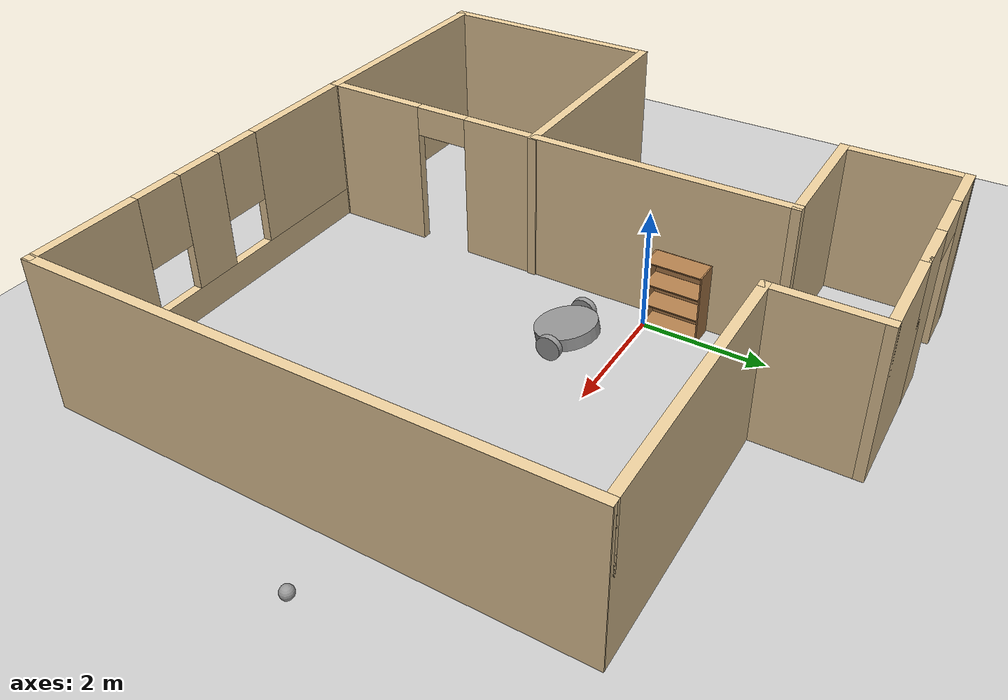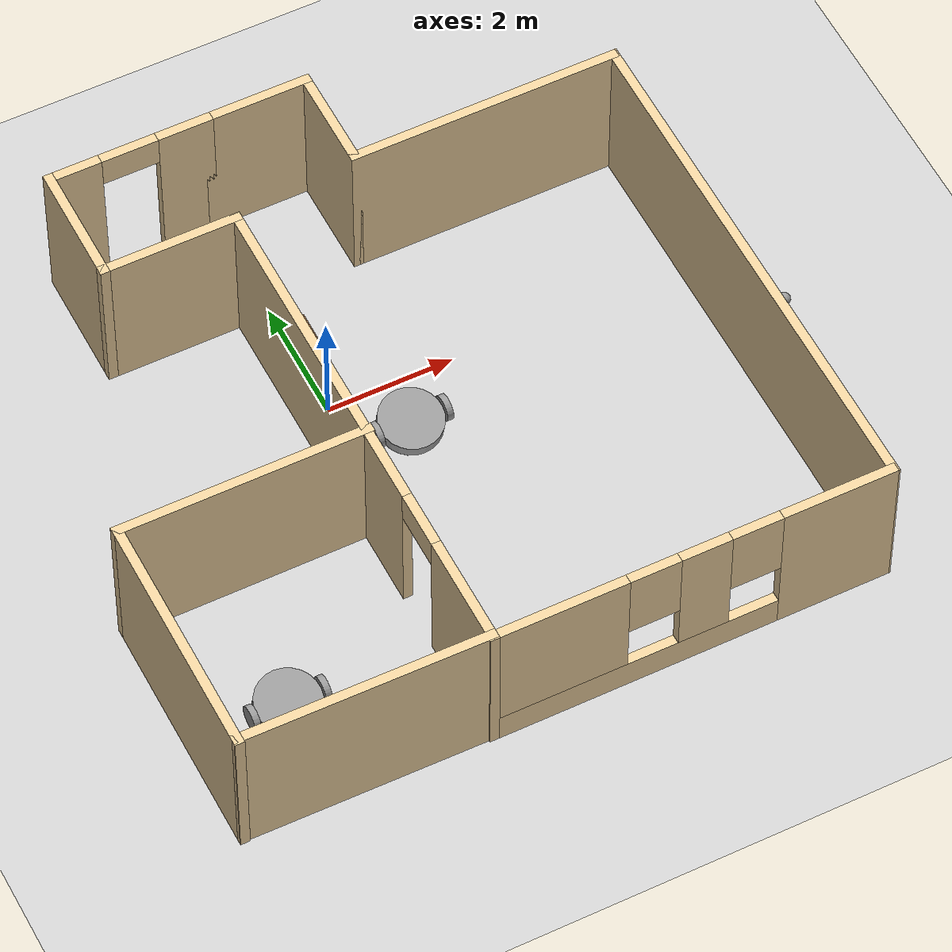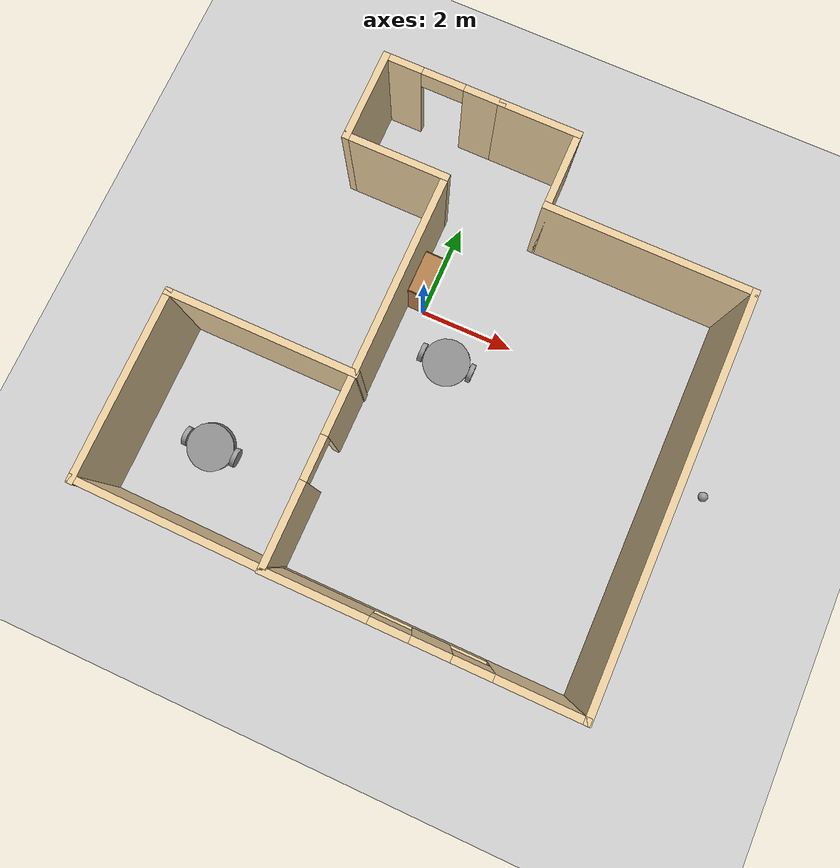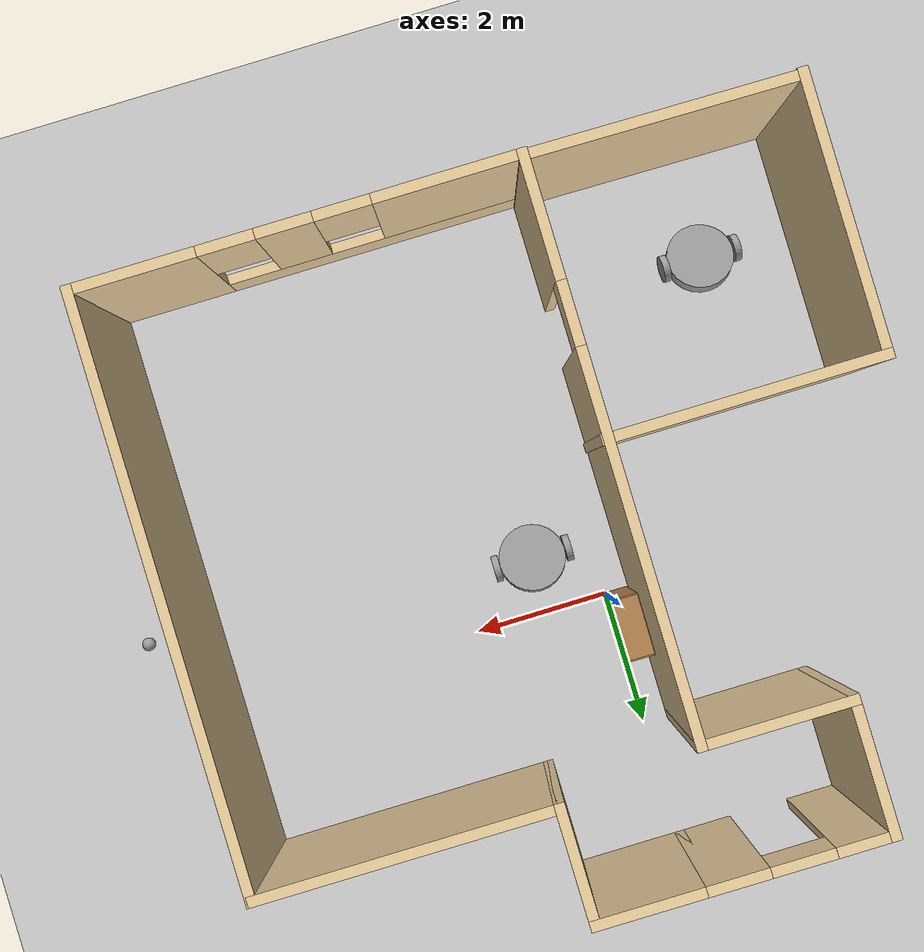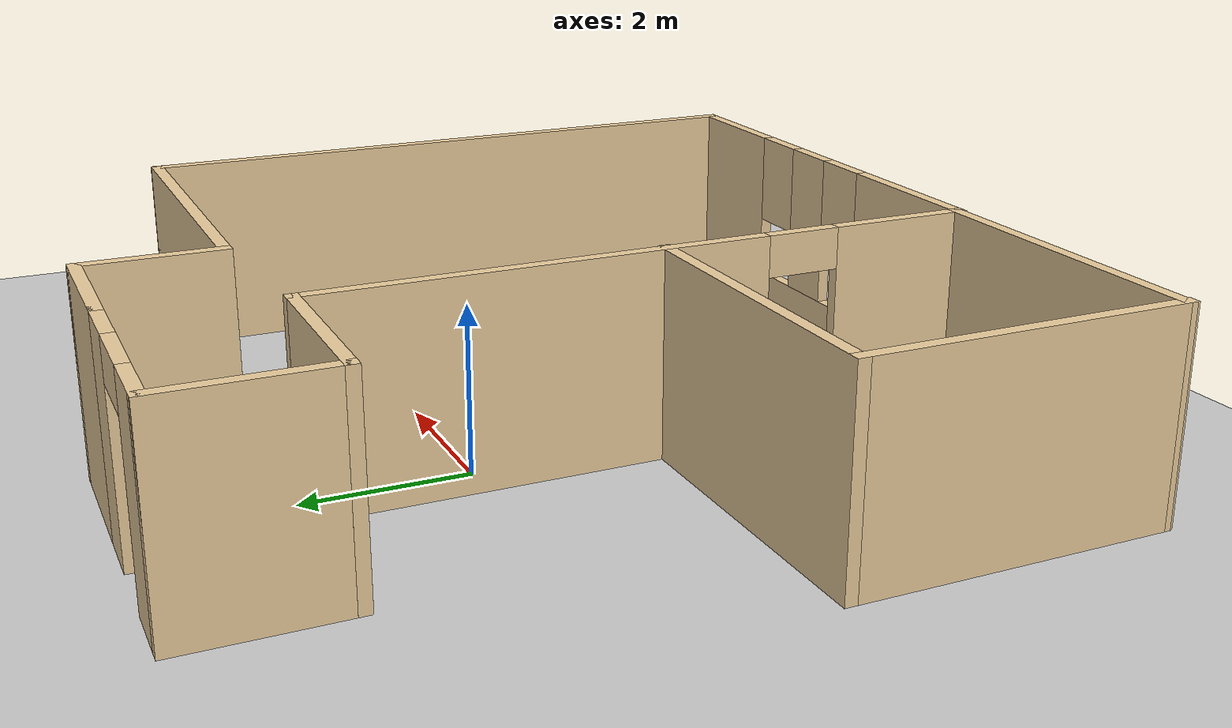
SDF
<sdf version="1.6">
 <world name="default">
  <plugin name="hello" filename="libhello.so"/>
  <light name="sun" type="directional">
   <pose>0 0 10 0 -0 0</pose>
   <diffuse>0.8 0.8 0.8 1</diffuse>
   <specular>0.2 0.2 0.2 1</specular>
   <attenuation>
    <range>1000</range>
    <constant>0.9</constant>
    <linear>0.01</linear>
    <quadratic>0.001</quadratic>
   </attenuation>
   <direction>-0.5 0.1 -0.9</direction>
  </light>
  <model name="ground_plane">
   <static>1</static>
   <link name="link">
    <collision name="collision">
     <geometry><plane><normal>0 0 1</normal><size>100 100</size></plane></geometry>
     <surface>
      <contact><collide_bitmask>65535</collide_bitmask></contact>
      <friction><ode><mu>100</mu><mu2>50</mu2></ode></friction>
     </surface>
    </collision>
    <visual name="visual">
     <cast_shadows>0</cast_shadows>
     <geometry><plane><normal>0 0 1</normal><size>100 100</size></plane></geometry>
     <material>
      <script><uri>file://media/materials/scripts/gazebo.material</uri><name>Gazebo/Grey</name></script>
     </material>
    </visual>
   </link>
  </model>
  <gravity>0 0 -9.8</gravity>
  <magnetic_field>6e-06 2.3e-05 -4.2e-05</magnetic_field>
  <atmosphere type="adiabatic"/>
  <physics name="default_physics" default="0" type="ode">
   <max_step_size>0.001</max_step_size>
   <real_time_factor>1</real_time_factor>
   <real_time_update_rate>1000</real_time_update_rate>
  </physics>
  <scene><ambient>0.4 0.4 0.4 1</ambient><background>0.7 0.7 0.7 1</background><shadows>1</shadows></scene>
  <spherical_coordinates>
   <surface_model>EARTH_WGS84</surface_model>
   <latitude_deg>0</latitude_deg>
   <longitude_deg>0</longitude_deg>
   <elevation>0</elevation>
   <heading_deg>0</heading_deg>
  </spherical_coordinates>
  <model name="building2">
   <pose>2.69803 -1.12189 0 0 -0 0</pose>
   <link name="Wall_10">
    <pose>-3.13529 -0.925 0 0 -0 1.5708</pose>
    <visual name="Wall_10_Visual_0">
     <pose>-3.222 0 1.25 0 -0 0</pose>
     <geometry><box><size>1.80599 0.15 2.5</size></box></geometry>
     <material>
      <script><uri>file://media/materials/scripts/gazebo.material</uri><name>Gazebo/Grey</name></script>
      <ambient>0.921569 0.807843 0.615686 1</ambient>
     </material>
     <meta><layer>0</layer></meta>
    </visual>
    <collision name="Wall_10_Collision_0">
     <geometry><box><size>1.80599 0.15 2.5</size></box></geometry>
     <pose>-3.222 0 1.25 0 -0 0</pose>
    </collision>
    <visual name="Wall_10_Visual_1">
     <pose>1.353 0 1.25 0 -0 0</pose>
     <geometry><box><size>5.54401 0.15 2.5</size></box></geometry>
     <material>
      <script><uri>file://media/materials/scripts/gazebo.material</uri><name>Gazebo/Grey</name></script>
      <ambient>0.921569 0.807843 0.615686 1</ambient>
     </material>
     <meta><layer>0</layer></meta>
    </visual>
    <collision name="Wall_10_Collision_1">
     <geometry><box><size>5.54401 0.15 2.5</size></box></geometry>
     <pose>1.353 0 1.25 0 -0 0</pose>
    </collision>
    <visual name="Wall_10_Visual_2">
     <pose>-1.86901 0 2.25 0 -0 0</pose>
     <geometry><box><size>0.9 0.15 0.5</size></box></geometry>
     <material>
      <script><uri>file://media/materials/scripts/gazebo.material</uri><name>Gazebo/Grey</name></script>
      <ambient>0.921569 0.807843 0.615686 1</ambient>
     </material>
     <meta><layer>0</layer></meta>
    </visual>
    <collision name="Wall_10_Collision_2">
     <geometry><box><size>0.9 0.15 0.5</size></box></geometry>
     <pose>-1.86901 0 2.25 0 -0 0</pose>
    </collision>
   </link>
   <link name="Wall_11">
    <collision name="Wall_11_Collision">
     <geometry><box><size>2.25 0.15 2.5</size></box></geometry>
     <pose>0 0 1.25 0 -0 0</pose>
    </collision>
    <visual name="Wall_11_Visual">
     <pose>0 0 1.25 0 -0 0</pose>
     <geometry><box><size>2.25 0.15 2.5</size></box></geometry>
     <material>
      <script><uri>file://media/materials/scripts/gazebo.material</uri><name>Gazebo/Grey</name></script>
      <ambient>0.921569 0.807843 0.615686 1</ambient>
     </material>
     <meta><layer>0</layer></meta>
    </visual>
    <pose>-4.18529 3.125 0 0 -0 3.14159</pose>
   </link>
   <link name="Wall_12">
    <collision name="Wall_12_Collision">
     <geometry><box><size>2 0.15 2.5</size></box></geometry>
     <pose>0 0 1.25 0 -0 0</pose>
    </collision>
    <visual name="Wall_12_Visual">
     <pose>0 0 1.25 0 -0 0</pose>
     <geometry><box><size>2 0.15 2.5</size></box></geometry>
     <material>
      <script><uri>file://media/materials/scripts/gazebo.material</uri><name>Gazebo/Grey</name></script>
      <ambient>0.921569 0.807843 0.615686 1</ambient>
     </material>
     <meta><layer>0</layer></meta>
    </visual>
    <pose>-5.23528 4.05 0 0 -0 1.5708</pose>
   </link>
   <link name="Wall_13">
    <pose>-3.98528 4.975 0 0 -0 0</pose>
    <visual name="Wall_13_Visual_0">
     <pose>-0.889332 0 1.25 0 -0 0</pose>
     <geometry><box><size>0.871337 0.15 2.5</size></box></geometry>
     <material>
      <script><uri>file://media/materials/scripts/gazebo.material</uri><name>Gazebo/Grey</name></script>
      <ambient>0.921569 0.807843 0.615686 1</ambient>
     </material>
     <meta><layer>0</layer></meta>
    </visual>
    <collision name="Wall_13_Collision_0">
     <geometry><box><size>0.871337 0.15 2.5</size></box></geometry>
     <pose>-0.889332 0 1.25 0 -0 0</pose>
    </collision>
    <visual name="Wall_13_Visual_1">
     <pose>0.885668 0 1.25 0 -0 0</pose>
     <geometry><box><size>0.878663 0.15 2.5</size></box></geometry>
     <material>
      <script><uri>file://media/materials/scripts/gazebo.material</uri><name>Gazebo/Grey</name></script>
      <ambient>0.921569 0.807843 0.615686 1</ambient>
     </material>
     <meta><layer>0</layer></meta>
    </visual>
    <collision name="Wall_13_Collision_1">
     <geometry><box><size>0.878663 0.15 2.5</size></box></geometry>
     <pose>0.885668 0 1.25 0 -0 0</pose>
    </collision>
    <visual name="Wall_13_Visual_2">
     <pose>-0.003663 0 2.25 0 -0 0</pose>
     <geometry><box><size>0.9 0.15 0.5</size></box></geometry>
     <material>
      <script><uri>file://media/materials/scripts/gazebo.material</uri><name>Gazebo/Grey</name></script>
      <ambient>0.921569 0.807843 0.615686 1</ambient>
     </material>
     <meta><layer>0</layer></meta>
    </visual>
    <collision name="Wall_13_Collision_2">
     <geometry><box><size>0.9 0.15 0.5</size></box></geometry>
     <pose>-0.003663 0 2.25 0 -0 0</pose>
    </collision>
   </link>
   <link name="Wall_15">
    <collision name="Wall_15_Collision">
     <geometry><box><size>4 0.15 2.5</size></box></geometry>
     <pose>0 0 1.25 0 -0 0</pose>
    </collision>
    <visual name="Wall_15_Visual">
     <pose>0 0 1.25 0 -0 0</pose>
     <geometry><box><size>4 0.15 2.5</size></box></geometry>
     <material>
      <script><uri>file://media/materials/scripts/gazebo.material</uri><name>Gazebo/Grey</name></script>
      <ambient>0.921569 0.807843 0.615686 1</ambient>
     </material>
     <meta><layer>0</layer></meta>
    </visual>
    <pose>-5.03498 -1.08234 0 0 -0 3.14159</pose>
   </link>
   <link name="Wall_16">
    <collision name="Wall_16_Collision">
     <geometry><box><size>4 0.15 2.5</size></box></geometry>
     <pose>0 0 1.25 0 -0 0</pose>
    </collision>
    <visual name="Wall_16_Visual">
     <pose>0 0 1.25 0 -0 0</pose>
     <geometry><box><size>4 0.15 2.5</size></box></geometry>
     <material>
      <script><uri>file://media/materials/scripts/gazebo.material</uri><name>Gazebo/Grey</name></script>
      <ambient>0.921569 0.807843 0.615686 1</ambient>
     </material>
     <meta><layer>0</layer></meta>
    </visual>
    <pose>-6.95998 -3.00734 0 0 -0 -1.5708</pose>
   </link>
   <link name="Wall_17">
    <collision name="Wall_17_Collision">
     <geometry><box><size>3.97494 0.15 2.5</size></box></geometry>
     <pose>0 0 1.25 0 -0 0</pose>
    </collision>
    <visual name="Wall_17_Visual">
     <pose>0 0 1.25 0 -0 0</pose>
     <geometry><box><size>3.97494 0.15 2.5</size></box></geometry>
     <material>
      <script><uri>file://media/materials/scripts/gazebo.material</uri><name>Gazebo/Grey</name></script>
      <ambient>0.921569 0.807843 0.615686 1</ambient>
     </material>
     <meta><layer>0</layer></meta>
    </visual>
    <pose>-5.04763 -4.93054 0 0 -0 -0.011153</pose>
   </link>
   <link name="Wall_5">
    <collision name="Wall_5_Collision">
     <geometry><box><size>1.75 0.15 2.5</size></box></geometry>
     <pose>0 0 1.25 0 -0 0</pose>
    </collision>
    <visual name="Wall_5_Visual">
     <pose>0 0 1.25 0 -0 0</pose>
     <geometry><box><size>1.75 0.15 2.5</size></box></geometry>
     <material>
      <script><uri>file://media/materials/scripts/gazebo.material</uri><name>Gazebo/Grey</name></script>
      <ambient>0.921569 0.807843 0.615686 1</ambient>
     </material>
     <meta><layer>0</layer></meta>
    </visual>
    <pose>-1.93528 4.975 0 0 -0 0</pose>
   </link>
   <link name="Wall_6">
    <collision name="Wall_6_Collision">
     <geometry><box><size>1.75 0.15 2.5</size></box></geometry>
     <pose>0 0 1.25 0 -0 0</pose>
    </collision>
    <visual name="Wall_6_Visual">
     <pose>0 0 1.25 0 -0 0</pose>
     <geometry><box><size>1.75 0.15 2.5</size></box></geometry>
     <material>
      <script><uri>file://media/materials/scripts/gazebo.material</uri><name>Gazebo/Grey</name></script>
      <ambient>0.921569 0.807843 0.615686 1</ambient>
     </material>
     <meta><layer>0</layer></meta>
    </visual>
    <pose>-1.13529 4.175 0 0 -0 -1.5708</pose>
   </link>
   <link name="Wall_7">
    <collision name="Wall_7_Collision">
     <geometry><box><size>4.35583 0.15 2.5</size></box></geometry>
     <pose>0 0 1.25 0 -0 0</pose>
    </collision>
    <visual name="Wall_7_Visual">
     <pose>0 0 1.25 0 -0 0</pose>
     <geometry><box><size>4.35583 0.15 2.5</size></box></geometry>
     <material>
      <script><uri>file://media/materials/scripts/gazebo.material</uri><name>Gazebo/Grey</name></script>
      <ambient>0.921569 0.807843 0.615686 1</ambient>
     </material>
     <meta><layer>0</layer></meta>
    </visual>
    <pose>0.967632 3.375 0 0 -0 0</pose>
   </link>
   <link name="Wall_8">
    <collision name="Wall_8_Collision">
     <geometry><box><size>8.5 0.15 2.5</size></box></geometry>
     <pose>0 0 1.25 0 -0 0</pose>
    </collision>
    <visual name="Wall_8_Visual">
     <pose>0 0 1.25 0 -0 0</pose>
     <geometry><box><size>8.5 0.15 2.5</size></box></geometry>
     <material>
      <script><uri>file://media/materials/scripts/gazebo.material</uri><name>Gazebo/Grey</name></script>
      <ambient>0.921569 0.807843 0.615686 1</ambient>
     </material>
     <meta><layer>0</layer></meta>
    </visual>
    <pose>3.09368 -0.8 0 0 -0 -1.5708</pose>
   </link>
   <link name="Wall_9">
    <pose>-0.032368 -4.975 0 0 -0 3.14159</pose>
    <visual name="Wall_9_Visual_0">
     <pose>-2.27409 0 1.25 0 -0 0</pose>
     <geometry><box><size>1.8077 0.15 2.5</size></box></geometry>
     <material>
      <script><uri>file://media/materials/scripts/gazebo.material</uri><name>Gazebo/Grey</name></script>
      <ambient>0.921569 0.807843 0.615686 1</ambient>
     </material>
     <meta><layer>0</layer></meta>
    </visual>
    <collision name="Wall_9_Collision_0">
     <geometry><box><size>1.8077 0.15 2.5</size></box></geometry>
     <pose>-2.27409 0 1.25 0 -0 0</pose>
    </collision>
    <visual name="Wall_9_Visual_1">
     <pose>0.903849 0 0.25 0 -0 0</pose>
     <geometry><box><size>4.54818 0.15 0.5</size></box></geometry>
     <material>
      <script><uri>file://media/materials/scripts/gazebo.material</uri><name>Gazebo/Grey</name></script>
      <ambient>0.921569 0.807843 0.615686 1</ambient>
     </material>
     <meta><layer>0</layer></meta>
    </visual>
    <collision name="Wall_9_Collision_1">
     <geometry><box><size>4.54818 0.15 0.5</size></box></geometry>
     <pose>0.903849 0 0.25 0 -0 0</pose>
    </collision>
    <visual name="Wall_9_Visual_2">
     <pose>-0.172234 0 1.5 0 -0 0</pose>
     <geometry><box><size>0.796012 0.15 2</size></box></geometry>
     <material>
      <script><uri>file://media/materials/scripts/gazebo.material</uri><name>Gazebo/Grey</name></script>
      <ambient>0.921569 0.807843 0.615686 1</ambient>
     </material>
     <meta><layer>0</layer></meta>
    </visual>
    <collision name="Wall_9_Collision_2">
     <geometry><box><size>0.796012 0.15 2</size></box></geometry>
     <pose>-0.172234 0 1.5 0 -0 0</pose>
    </collision>
    <visual name="Wall_9_Visual_3">
     <pose>2.10186 0 1.5 0 -0 0</pose>
     <geometry><box><size>2.15217 0.15 2</size></box></geometry>
     <material>
      <script><uri>file://media/materials/scripts/gazebo.material</uri><name>Gazebo/Grey</name></script>
      <ambient>0.921569 0.807843 0.615686 1</ambient>
     </material>
     <meta><layer>0</layer></meta>
    </visual>
    <collision name="Wall_9_Collision_3">
     <geometry><box><size>2.15217 0.15 2</size></box></geometry>
     <pose>2.10186 0 1.5 0 -0 0</pose>
    </collision>
    <visual name="Wall_9_Visual_4">
     <pose>-0.97024 0 1.9 0 -0 0</pose>
     <geometry><box><size>0.8 0.15 1.2</size></box></geometry>
     <material>
      <script><uri>file://media/materials/scripts/gazebo.material</uri><name>Gazebo/Grey</name></script>
      <ambient>0.921569 0.807843 0.615686 1</ambient>
     </material>
     <meta><layer>0</layer></meta>
    </visual>
    <collision name="Wall_9_Collision_4">
     <geometry><box><size>0.8 0.15 1.2</size></box></geometry>
     <pose>-0.97024 0 1.9 0 -0 0</pose>
    </collision>
    <visual name="Wall_9_Visual_5">
     <pose>0.625772 0 1.9 0 -0 0</pose>
     <geometry><box><size>0.8 0.15 1.2</size></box></geometry>
     <material>
      <script><uri>file://media/materials/scripts/gazebo.material</uri><name>Gazebo/Grey</name></script>
      <ambient>0.921569 0.807843 0.615686 1</ambient>
     </material>
     <meta><layer>0</layer></meta>
    </visual>
    <collision name="Wall_9_Collision_5">
     <geometry><box><size>0.8 0.15 1.2</size></box></geometry>
     <pose>0.625772 0 1.9 0 -0 0</pose>
    </collision>
   </link>
   <static>1</static>
  </model>
  <model name="vacuum_cleaner2">
   <link name="link_0">
    <inertial>
     <mass>1</mass>
     <inertia><ixx>0.145833</ixx><ixy>0</ixy><ixz>0</ixz><iyy>0.145833</iyy><iyz>0</iyz><izz>0.125</izz></inertia>
    </inertial>
    <pose>1e-06 0 0 0 -0 0</pose>
    <visual name="visual">
     <geometry><cylinder><radius>0.5</radius><length>0.2</length></cylinder></geometry>
     <material>
      <lighting>1</lighting>
      <script><uri>file://media/materials/scripts/gazebo.material</uri><name>Gazebo/Grey</name></script>
      <shader type="pixel"><normal_map>__default__</normal_map></shader>
      <ambient>0.3 0.3 0.3 1</ambient>
      <diffuse>0.7 0.7 0.7 1</diffuse>
      <specular>0.01 0.01 0.01 1</specular>
      <emissive>0 0 0 1</emissive>
     </material>
    </visual>
    <collision name="collision">
     <geometry><cylinder><radius>0.5</radius><length>0.2</length></cylinder></geometry>
     <surface>
      <friction>
       <ode><mu>1</mu><mu2>1</mu2><fdir1>0 0 0</fdir1><slip1>0</slip1><slip2>0</slip2></ode>
       <torsional>
        <coefficient>1</coefficient>
        <patch_radius>0</patch_radius>
        <surface_radius>0</surface_radius>
        <use_patch_radius>1</use_patch_radius>
        <ode><slip>0</slip></ode>
       </torsional>
      </friction>
      <bounce><restitution_coefficient>0</restitution_coefficient><threshold>1e+06</threshold></bounce>
      <contact>
       <collide_without_contact>0</collide_without_contact>
       <collide_without_contact_bitmask>1</collide_without_contact_bitmask>
       <collide_bitmask>1</collide_bitmask>
       <ode>
        <soft_cfm>0</soft_cfm>
        <soft_erp>0.2</soft_erp>
        <kp>1e+13</kp>
        <kd>1</kd>
        <max_vel>0.01</max_vel>
        <min_depth>0</min_depth>
       </ode>
       <bullet>
        <split_impulse>1</split_impulse>
        <split_impulse_penetration_threshold>-0.01</split_impulse_penetration_threshold>
        <soft_cfm>0</soft_cfm>
        <soft_erp>0.2</soft_erp>
        <kp>1e+13</kp>
        <kd>1</kd>
       </bullet>
      </contact>
     </surface>
    </collision>
   </link>
   <link name="link_1">
    <inertial>
     <mass>1</mass>
     <inertia><ixx>0.145833</ixx><ixy>0</ixy><ixz>0</ixz><iyy>0.145833</iyy><iyz>0</iyz><izz>0.125</izz></inertia>
    </inertial>
    <pose>0.55002 0 0 0 -0 0</pose>
    <visual name="visual">
     <pose>0 0 0 0 1.5707 0</pose>
     <geometry><cylinder><radius>0.2</radius><length>0.1</length></cylinder></geometry>
     <material>
      <lighting>1</lighting>
      <script><uri>file://media/materials/scripts/gazebo.material</uri><name>Gazebo/Grey</name></script>
      <shader type="pixel"><normal_map>__default__</normal_map></shader>
      <ambient>0.3 0.3 0.3 1</ambient>
      <diffuse>0.7 0.7 0.7 1</diffuse>
      <specular>0.01 0.01 0.01 1</specular>
      <emissive>0 0 0 1</emissive>
     </material>
    </visual>
    <collision name="collision">
     <pose>0 0 0 0 1.5707 0</pose>
     <geometry><cylinder><radius>0.2</radius><length>0.1</length></cylinder></geometry>
     <surface>
      <friction>
       <ode><mu>1</mu><mu2>1</mu2><fdir1>0 0 0</fdir1><slip1>0</slip1><slip2>0</slip2></ode>
       <torsional>
        <coefficient>1</coefficient>
        <patch_radius>0</patch_radius>
        <surface_radius>0</surface_radius>
        <use_patch_radius>1</use_patch_radius>
        <ode><slip>0</slip></ode>
       </torsional>
      </friction>
      <bounce><restitution_coefficient>0</restitution_coefficient><threshold>1e+06</threshold></bounce>
      <contact>
       <collide_without_contact>0</collide_without_contact>
       <collide_without_contact_bitmask>1</collide_without_contact_bitmask>
       <collide_bitmask>1</collide_bitmask>
       <ode>
        <soft_cfm>0</soft_cfm>
        <soft_erp>0.2</soft_erp>
        <kp>1e+13</kp>
        <kd>1</kd>
        <max_vel>0.01</max_vel>
        <min_depth>0</min_depth>
       </ode>
       <bullet>
        <split_impulse>1</split_impulse>
        <split_impulse_penetration_threshold>-0.01</split_impulse_penetration_threshold>
        <soft_cfm>0</soft_cfm>
        <soft_erp>0.2</soft_erp>
        <kp>1e+13</kp>
        <kd>1</kd>
       </bullet>
      </contact>
     </surface>
    </collision>
   </link>
   <link name="link_1_clone">
    <inertial>
     <mass>1</mass>
     <inertia><ixx>0.145833</ixx><ixy>0</ixy><ixz>0</ixz><iyy>0.145833</iyy><iyz>0</iyz><izz>0.125</izz></inertia>
    </inertial>
    <pose>-0.550018 0 0 0 -0 0</pose>
    <visual name="visual">
     <pose>0 0 0 0 1.5707 0</pose>
     <geometry><cylinder><radius>0.2</radius><length>0.1</length></cylinder></geometry>
     <material>
      <lighting>1</lighting>
      <script><uri>file://media/materials/scripts/gazebo.material</uri><name>Gazebo/Grey</name></script>
      <shader type="pixel"><normal_map>__default__</normal_map></shader>
      <ambient>0.3 0.3 0.3 1</ambient>
      <diffuse>0.7 0.7 0.7 1</diffuse>
      <specular>0.01 0.01 0.01 1</specular>
      <emissive>0 0 0 1</emissive>
     </material>
    </visual>
    <collision name="collision">
     <pose>0 0 0 0 1.5707 0</pose>
     <geometry><cylinder><radius>0.2</radius><length>0.1</length></cylinder></geometry>
     <surface>
      <friction>
       <ode><mu>1</mu><mu2>1</mu2><fdir1>0 0 0</fdir1><slip1>0</slip1><slip2>0</slip2></ode>
       <torsional>
        <coefficient>1</coefficient>
        <patch_radius>0</patch_radius>
        <surface_radius>0</surface_radius>
        <use_patch_radius>1</use_patch_radius>
        <ode><slip>0</slip></ode>
       </torsional>
      </friction>
      <bounce><restitution_coefficient>0</restitution_coefficient><threshold>1e+06</threshold></bounce>
      <contact>
       <collide_without_contact>0</collide_without_contact>
       <collide_without_contact_bitmask>1</collide_without_contact_bitmask>
       <collide_bitmask>1</collide_bitmask>
       <ode>
        <soft_cfm>0</soft_cfm>
        <soft_erp>0.2</soft_erp>
        <kp>1e+13</kp>
        <kd>1</kd>
        <max_vel>0.01</max_vel>
        <min_depth>0</min_depth>
       </ode>
       <bullet>
        <split_impulse>1</split_impulse>
        <split_impulse_penetration_threshold>-0.01</split_impulse_penetration_threshold>
        <soft_cfm>0</soft_cfm>
        <soft_erp>0.2</soft_erp>
        <kp>1e+13</kp>
        <kd>1</kd>
       </bullet>
      </contact>
     </surface>
    </collision>
   </link>
   <joint name="link_0_JOINT_0" type="revolute">
    <parent>link_0</parent>
    <child>link_1</child>
    <axis>
     <xyz>0 0 1</xyz>
     <use_parent_model_frame>0</use_parent_model_frame>
     <limit>
      <lower>-1.79769e+308</lower>
      <upper>1.79769e+308</upper>
      <effort>-1</effort>
      <velocity>-1</velocity>
     </limit>
     <dynamics>
      <spring_reference>0</spring_reference>
      <spring_stiffness>0</spring_stiffness>
      <damping>0</damping>
     </dynamics>
    </axis>
    <physics>
     <ode><limit><cfm>0</cfm><erp>0.2</erp></limit><suspension><cfm>0</cfm><erp>0.2</erp></suspension></ode>
    </physics>
   </joint>
   <joint name="link_0_JOINT_1" type="revolute">
    <parent>link_0</parent>
    <child>link_1_clone</child>
    <axis>
     <xyz>0 0 1</xyz>
     <use_parent_model_frame>0</use_parent_model_frame>
     <limit>
      <lower>-1.79769e+308</lower>
      <upper>1.79769e+308</upper>
      <effort>-1</effort>
      <velocity>-1</velocity>
     </limit>
     <dynamics>
      <spring_reference>0</spring_reference>
      <spring_stiffness>0</spring_stiffness>
      <damping>0</damping>
     </dynamics>
    </axis>
    <physics>
     <ode><limit><cfm>0</cfm><erp>0.2</erp></limit><suspension><cfm>0</cfm><erp>0.2</erp></suspension></ode>
    </physics>
   </joint>
   <static>0</static>
   <pose>0.9081 -0.850279 0.199995 0.205275 -2e-06 -0.001494</pose>
  </model>
  <model name="vacuum_cleaner2_0">
   <link name="link_0">
    <inertial>
     <mass>1</mass>
     <inertia><ixx>0.145833</ixx><ixy>0</ixy><ixz>0</ixz><iyy>0.145833</iyy><iyz>0</iyz><izz>0.125</izz></inertia>
    </inertial>
    <pose>1e-06 0 0 0 -0 0</pose>
    <visual name="visual">
     <geometry><cylinder><radius>0.5</radius><length>0.2</length></cylinder></geometry>
     <material>
      <lighting>1</lighting>
      <script><uri>file://media/materials/scripts/gazebo.material</uri><name>Gazebo/Grey</name></script>
      <shader type="pixel"><normal_map>__default__</normal_map></shader>
      <ambient>0.3 0.3 0.3 1</ambient>
      <diffuse>0.7 0.7 0.7 1</diffuse>
      <specular>0.01 0.01 0.01 1</specular>
      <emissive>0 0 0 1</emissive>
     </material>
    </visual>
    <collision name="collision">
     <geometry><cylinder><radius>0.5</radius><length>0.2</length></cylinder></geometry>
     <surface>
      <friction>
       <ode><mu>1</mu><mu2>1</mu2><fdir1>0 0 0</fdir1><slip1>0</slip1><slip2>0</slip2></ode>
       <torsional>
        <coefficient>1</coefficient>
        <patch_radius>0</patch_radius>
        <surface_radius>0</surface_radius>
        <use_patch_radius>1</use_patch_radius>
        <ode><slip>0</slip></ode>
       </torsional>
      </friction>
      <bounce><restitution_coefficient>0</restitution_coefficient><threshold>1e+06</threshold></bounce>
      <contact>
       <collide_without_contact>0</collide_without_contact>
       <collide_without_contact_bitmask>1</collide_without_contact_bitmask>
       <collide_bitmask>1</collide_bitmask>
       <ode>
        <soft_cfm>0</soft_cfm>
        <soft_erp>0.2</soft_erp>
        <kp>1e+13</kp>
        <kd>1</kd>
        <max_vel>0.01</max_vel>
        <min_depth>0</min_depth>
       </ode>
       <bullet>
        <split_impulse>1</split_impulse>
        <split_impulse_penetration_threshold>-0.01</split_impulse_penetration_threshold>
        <soft_cfm>0</soft_cfm>
        <soft_erp>0.2</soft_erp>
        <kp>1e+13</kp>
        <kd>1</kd>
       </bullet>
      </contact>
     </surface>
    </collision>
   </link>
   <link name="link_1">
    <inertial>
     <mass>1</mass>
     <inertia><ixx>0.145833</ixx><ixy>0</ixy><ixz>0</ixz><iyy>0.145833</iyy><iyz>0</iyz><izz>0.125</izz></inertia>
    </inertial>
    <pose>0.55002 0 0 0 -0 0</pose>
    <visual name="visual">
     <pose>0 0 0 0 1.5707 0</pose>
     <geometry><cylinder><radius>0.2</radius><length>0.1</length></cylinder></geometry>
     <material>
      <lighting>1</lighting>
      <script><uri>file://media/materials/scripts/gazebo.material</uri><name>Gazebo/Grey</name></script>
      <shader type="pixel"><normal_map>__default__</normal_map></shader>
      <ambient>0.3 0.3 0.3 1</ambient>
      <diffuse>0.7 0.7 0.7 1</diffuse>
      <specular>0.01 0.01 0.01 1</specular>
      <emissive>0 0 0 1</emissive>
     </material>
    </visual>
    <collision name="collision">
     <pose>0 0 0 0 1.5707 0</pose>
     <geometry><cylinder><radius>0.2</radius><length>0.1</length></cylinder></geometry>
     <surface>
      <friction>
       <ode><mu>1</mu><mu2>1</mu2><fdir1>0 0 0</fdir1><slip1>0</slip1><slip2>0</slip2></ode>
       <torsional>
        <coefficient>1</coefficient>
        <patch_radius>0</patch_radius>
        <surface_radius>0</surface_radius>
        <use_patch_radius>1</use_patch_radius>
        <ode><slip>0</slip></ode>
       </torsional>
      </friction>
      <bounce><restitution_coefficient>0</restitution_coefficient><threshold>1e+06</threshold></bounce>
      <contact>
       <collide_without_contact>0</collide_without_contact>
       <collide_without_contact_bitmask>1</collide_without_contact_bitmask>
       <collide_bitmask>1</collide_bitmask>
       <ode>
        <soft_cfm>0</soft_cfm>
        <soft_erp>0.2</soft_erp>
        <kp>1e+13</kp>
        <kd>1</kd>
        <max_vel>0.01</max_vel>
        <min_depth>0</min_depth>
       </ode>
       <bullet>
        <split_impulse>1</split_impulse>
        <split_impulse_penetration_threshold>-0.01</split_impulse_penetration_threshold>
        <soft_cfm>0</soft_cfm>
        <soft_erp>0.2</soft_erp>
        <kp>1e+13</kp>
        <kd>1</kd>
       </bullet>
      </contact>
     </surface>
    </collision>
   </link>
   <link name="link_1_clone">
    <inertial>
     <mass>1</mass>
     <inertia><ixx>0.145833</ixx><ixy>0</ixy><ixz>0</ixz><iyy>0.145833</iyy><iyz>0</iyz><izz>0.125</izz></inertia>
    </inertial>
    <pose>-0.550018 0 0 0 -0 0</pose>
    <visual name="visual">
     <pose>0 0 0 0 1.5707 0</pose>
     <geometry><cylinder><radius>0.2</radius><length>0.1</length></cylinder></geometry>
     <material>
      <lighting>1</lighting>
      <script><uri>file://media/materials/scripts/gazebo.material</uri><name>Gazebo/Grey</name></script>
      <shader type="pixel"><normal_map>__default__</normal_map></shader>
      <ambient>0.3 0.3 0.3 1</ambient>
      <diffuse>0.7 0.7 0.7 1</diffuse>
      <specular>0.01 0.01 0.01 1</specular>
      <emissive>0 0 0 1</emissive>
     </material>
    </visual>
    <collision name="collision">
     <pose>0 0 0 0 1.5707 0</pose>
     <geometry><cylinder><radius>0.2</radius><length>0.1</length></cylinder></geometry>
     <surface>
      <friction>
       <ode><mu>1</mu><mu2>1</mu2><fdir1>0 0 0</fdir1><slip1>0</slip1><slip2>0</slip2></ode>
       <torsional>
        <coefficient>1</coefficient>
        <patch_radius>0</patch_radius>
        <surface_radius>0</surface_radius>
        <use_patch_radius>1</use_patch_radius>
        <ode><slip>0</slip></ode>
       </torsional>
      </friction>
      <bounce><restitution_coefficient>0</restitution_coefficient><threshold>1e+06</threshold></bounce>
      <contact>
       <collide_without_contact>0</collide_without_contact>
       <collide_without_contact_bitmask>1</collide_without_contact_bitmask>
       <collide_bitmask>1</collide_bitmask>
       <ode>
        <soft_cfm>0</soft_cfm>
        <soft_erp>0.2</soft_erp>
        <kp>1e+13</kp>
        <kd>1</kd>
        <max_vel>0.01</max_vel>
        <min_depth>0</min_depth>
       </ode>
       <bullet>
        <split_impulse>1</split_impulse>
        <split_impulse_penetration_threshold>-0.01</split_impulse_penetration_threshold>
        <soft_cfm>0</soft_cfm>
        <soft_erp>0.2</soft_erp>
        <kp>1e+13</kp>
        <kd>1</kd>
       </bullet>
      </contact>
     </surface>
    </collision>
   </link>
   <joint name="link_0_JOINT_0" type="revolute">
    <parent>link_0</parent>
    <child>link_1</child>
    <axis>
     <xyz>0 0 1</xyz>
     <use_parent_model_frame>0</use_parent_model_frame>
     <limit>
      <lower>-1.79769e+308</lower>
      <upper>1.79769e+308</upper>
      <effort>-1</effort>
      <velocity>-1</velocity>
     </limit>
     <dynamics>
      <spring_reference>0</spring_reference>
      <spring_stiffness>0</spring_stiffness>
      <damping>0</damping>
     </dynamics>
    </axis>
    <physics>
     <ode><limit><cfm>0</cfm><erp>0.2</erp></limit><suspension><cfm>0</cfm><erp>0.2</erp></suspension></ode>
    </physics>
   </joint>
   <joint name="link_0_JOINT_1" type="revolute">
    <parent>link_0</parent>
    <child>link_1_clone</child>
    <axis>
     <xyz>0 0 1</xyz>
     <use_parent_model_frame>0</use_parent_model_frame>
     <limit>
      <lower>-1.79769e+308</lower>
      <upper>1.79769e+308</upper>
      <effort>-1</effort>
      <velocity>-1</velocity>
     </limit>
     <dynamics>
      <spring_reference>0</spring_reference>
      <spring_stiffness>0</spring_stiffness>
      <damping>0</damping>
     </dynamics>
    </axis>
    <physics>
     <ode><limit><cfm>0</cfm><erp>0.2</erp></limit><suspension><cfm>0</cfm><erp>0.2</erp></suspension></ode>
    </physics>
   </joint>
   <static>0</static>
   <pose>-2.7936 -4.44177 0.199998 0.205463 3e-06 -0.000828</pose>
  </model>
  <model name="bookshelf">
   <static>1</static>
   <link name="link">
    <inertial><mass>1</mass></inertial>
    <collision name="back">
     <pose>0 0.005 0.6 0 -0 0</pose>
     <geometry><box><size>0.9 0.01 1.2</size></box></geometry>
    </collision>
    <visual name="visual1">
     <pose>0 0.005 0.6 0 -0 0</pose>
     <geometry><box><size>0.9 0.01 1.2</size></box></geometry>
     <material>
      <script><uri>file://media/materials/scripts/gazebo.material</uri><name>Gazebo/Wood</name></script>
     </material>
    </visual>
    <collision name="left_side">
     <pose>0.45 -0.195 0.6 0 -0 0</pose>
     <geometry><box><size>0.02 0.4 1.2</size></box></geometry>
    </collision>
    <visual name="visual2">
     <pose>0.45 -0.195 0.6 0 -0 0</pose>
     <geometry><box><size>0.02 0.4 1.2</size></box></geometry>
     <material>
      <script><uri>file://media/materials/scripts/gazebo.material</uri><name>Gazebo/Wood</name></script>
     </material>
    </visual>
    <collision name="right_side">
     <pose>-0.45 -0.195 0.6 0 -0 0</pose>
     <geometry><box><size>0.02 0.4 1.2</size></box></geometry>
    </collision>
    <visual name="visual3">
     <pose>-0.45 -0.195 0.6 0 -0 0</pose>
     <geometry><box><size>0.02 0.4 1.2</size></box></geometry>
     <material>
      <script><uri>file://media/materials/scripts/gazebo.material</uri><name>Gazebo/Wood</name></script>
     </material>
    </visual>
    <collision name="bottom">
     <pose>0 -0.195 0.03 0 -0 0</pose>
     <geometry><box><size>0.88 0.4 0.06</size></box></geometry>
    </collision>
    <visual name="visual4">
     <pose>0 -0.195 0.03 0 -0 0</pose>
     <geometry><box><size>0.88 0.4 0.06</size></box></geometry>
     <material>
      <script><uri>file://media/materials/scripts/gazebo.material</uri><name>Gazebo/Wood</name></script>
     </material>
    </visual>
    <collision name="top">
     <pose>0 -0.195 1.19 0 -0 0</pose>
     <geometry><box><size>0.88 0.4 0.02</size></box></geometry>
    </collision>
    <visual name="visual5">
     <pose>0 -0.195 1.19 0 -0 0</pose>
     <geometry><box><size>0.88 0.4 0.02</size></box></geometry>
     <material>
      <script><uri>file://media/materials/scripts/gazebo.material</uri><name>Gazebo/Wood</name></script>
     </material>
    </visual>
    <collision name="low_shelf">
     <pose>0 -0.195 0.43 0 -0 0</pose>
     <geometry><box><size>0.88 0.4 0.02</size></box></geometry>
    </collision>
    <visual name="visual6">
     <pose>0 -0.195 0.43 0 -0 0</pose>
     <geometry><box><size>0.88 0.4 0.02</size></box></geometry>
     <material>
      <script><uri>file://media/materials/scripts/gazebo.material</uri><name>Gazebo/Wood</name></script>
     </material>
    </visual>
    <collision name="high_shelf">
     <pose>0 -0.195 0.8 0 -0 0</pose>
     <geometry><box><size>0.88 0.4 0.02</size></box></geometry>
    </collision>
    <visual name="visual7">
     <pose>0 -0.195 0.8 0 -0 0</pose>
     <geometry><box><size>0.88 0.4 0.02</size></box></geometry>
     <material>
      <script><uri>file://media/materials/scripts/gazebo.material</uri><name>Gazebo/Wood</name></script>
     </material>
    </visual>
   </link>
   <pose>-0.3368 0.443604 0 0 -0 1.56352</pose>
  </model>
  <model name="my_ball">
   <link name="link_0">
    <inertial>
     <mass>1</mass>
     <inertia><ixx>0.1</ixx><ixy>0</ixy><ixz>0</ixz><iyy>0.1</iyy><iyz>0</iyz><izz>0.1</izz></inertia>
    </inertial>
    <visual name="visual">
     <geometry><sphere><radius>0.1</radius></sphere></geometry>
     <material>
      <lighting>1</lighting>
      <script><uri>file://media/materials/scripts/gazebo.material</uri><name>Gazebo/Grey</name></script>
      <shader type="pixel"><normal_map>__default__</normal_map></shader>
      <ambient>1 1 1 1</ambient>
      <diffuse>1 1 1 1</diffuse>
      <specular>1 1 1 1</specular>
      <emissive>1 1 1 1</emissive>
     </material>
    </visual>
    <collision name="collision">
     <geometry><sphere><radius>0.1</radius></sphere></geometry>
     <surface>
      <friction>
       <ode><mu>1</mu><mu2>1</mu2><fdir1>0 0 0</fdir1><slip1>0</slip1><slip2>0</slip2></ode>
       <torsional>
        <coefficient>1</coefficient>
        <patch_radius>0</patch_radius>
        <surface_radius>0</surface_radius>
        <use_patch_radius>1</use_patch_radius>
        <ode><slip>0</slip></ode>
       </torsional>
      </friction>
      <bounce><restitution_coefficient>0</restitution_coefficient><threshold>1e+06</threshold></bounce>
      <contact>
       <collide_without_contact>0</collide_without_contact>
       <collide_without_contact_bitmask>1</collide_without_contact_bitmask>
       <collide_bitmask>1</collide_bitmask>
       <ode>
        <soft_cfm>0</soft_cfm>
        <soft_erp>0.2</soft_erp>
        <kp>1e+13</kp>
        <kd>1</kd>
        <max_vel>0.01</max_vel>
        <min_depth>0</min_depth>
       </ode>
       <bullet>
        <split_impulse>1</split_impulse>
        <split_impulse_penetration_threshold>-0.01</split_impulse_penetration_threshold>
        <soft_cfm>0</soft_cfm>
        <soft_erp>0.2</soft_erp>
        <kp>1e+13</kp>
        <kd>1</kd>
       </bullet>
      </contact>
     </surface>
    </collision>
   </link>
   <static>0</static>
   <pose>6.82538 -1.26416 0.1 0 -0 0</pose>
  </model>
 </world>
</sdf>
